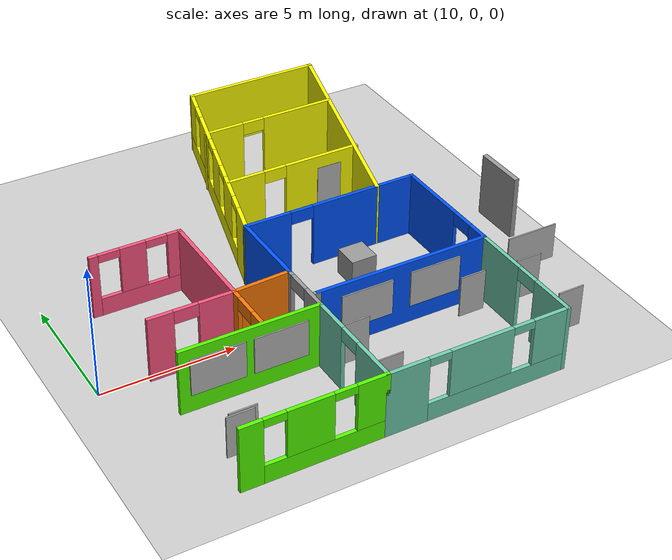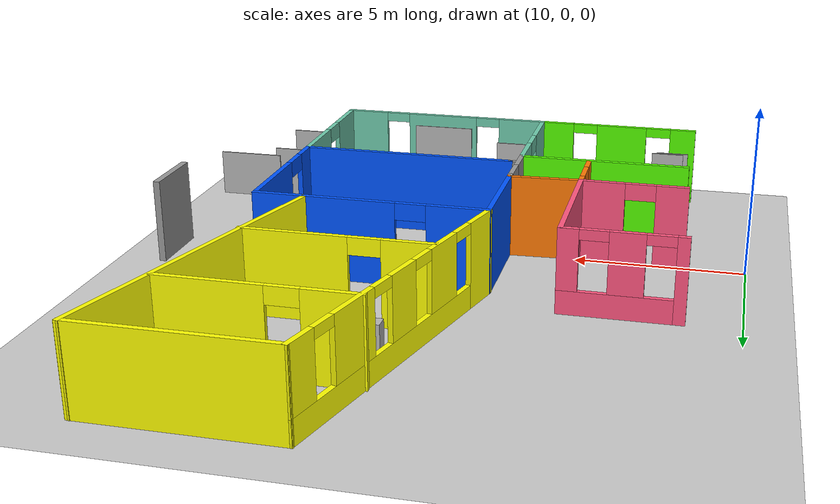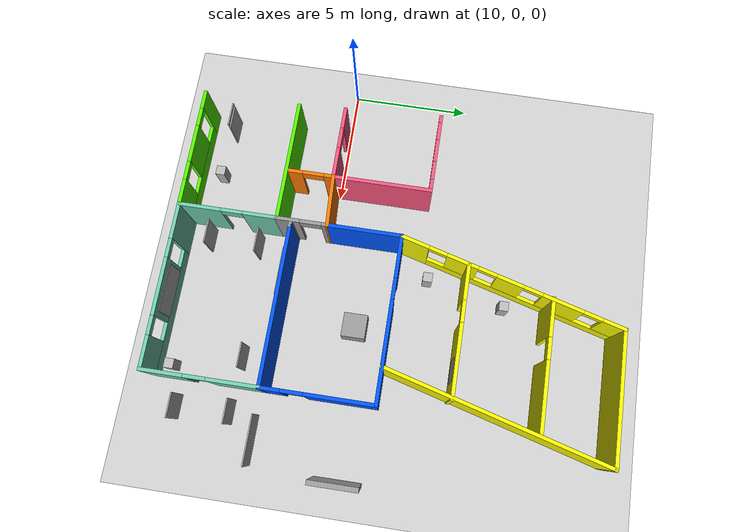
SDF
<sdf version="1.6">
 <world name="default">
  <model name="ground_plane">
   <static>1</static>
   <link name="link">
    <collision name="collision">
     <geometry><plane><normal>0 0 1</normal><size>100 100</size></plane></geometry>
     <surface><friction><ode><mu>100</mu><mu2>50</mu2></ode></friction></surface>
    </collision>
    <visual name="visual">
     <cast_shadows>0</cast_shadows>
     <geometry><plane><normal>0 0 1</normal><size>100 100</size></plane></geometry>
     <material>
      <script><uri>file://media/materials/scripts/gazebo.material</uri><name>Gazebo/Grey</name></script>
     </material>
    </visual>
   </link>
  </model>
  <model name="gallery2">
   <pose>17.6734 2.86394 0 0 -0 0</pose>
   <link name="Wall_27">
    <pose>-4.41014 1.08662 0 0 -0 0</pose>
    <visual name="Wall_27_Visual_0">
     <pose>-1.58096 0 1.25 0 -0 0</pose>
     <geometry><box><size>0.338071 0.15 2.5</size></box></geometry>
     <material>
      <script><uri>file://media/materials/scripts/gazebo.material</uri><name>Gazebo/Grey</name></script>
      <ambient>1 0.333333 0.498039 1</ambient>
     </material>
     <meta><layer>0</layer></meta>
    </visual>
    <collision name="Wall_27_Collision_0">
     <geometry><box><size>0.338071 0.15 2.5</size></box></geometry>
     <pose>-1.58096 0 1.25 0 -0 0</pose>
    </collision>
    <visual name="Wall_27_Visual_1">
     <pose>0.169036 0 0.35 0 -0 0</pose>
     <geometry><box><size>3.16193 0.15 0.7</size></box></geometry>
     <material>
      <script><uri>file://media/materials/scripts/gazebo.material</uri><name>Gazebo/Grey</name></script>
      <ambient>1 0.333333 0.498039 1</ambient>
     </material>
     <meta><layer>0</layer></meta>
    </visual>
    <collision name="Wall_27_Collision_1">
     <geometry><box><size>3.16193 0.15 0.7</size></box></geometry>
     <pose>0.169036 0 0.35 0 -0 0</pose>
    </collision>
    <visual name="Wall_27_Visual_2">
     <pose>-0.12194 0 1.6 0 -0 0</pose>
     <geometry><box><size>0.979976 0.15 1.8</size></box></geometry>
     <material>
      <script><uri>file://media/materials/scripts/gazebo.material</uri><name>Gazebo/Grey</name></script>
      <ambient>1 0.333333 0.498039 1</ambient>
     </material>
     <meta><layer>0</layer></meta>
    </visual>
    <collision name="Wall_27_Collision_2">
     <geometry><box><size>0.979976 0.15 1.8</size></box></geometry>
     <pose>-0.12194 0 1.6 0 -0 0</pose>
    </collision>
    <visual name="Wall_27_Visual_3">
     <pose>1.45902 0 1.6 0 -0 0</pose>
     <geometry><box><size>0.581952 0.15 1.8</size></box></geometry>
     <material>
      <script><uri>file://media/materials/scripts/gazebo.material</uri><name>Gazebo/Grey</name></script>
      <ambient>1 0.333333 0.498039 1</ambient>
     </material>
     <meta><layer>0</layer></meta>
    </visual>
    <collision name="Wall_27_Collision_3">
     <geometry><box><size>0.581952 0.15 1.8</size></box></geometry>
     <pose>1.45902 0 1.6 0 -0 0</pose>
    </collision>
    <visual name="Wall_27_Visual_4">
     <pose>-1.01193 0 2.35 0 -0 0</pose>
     <geometry><box><size>0.8 0.15 0.3</size></box></geometry>
     <material>
      <script><uri>file://media/materials/scripts/gazebo.material</uri><name>Gazebo/Grey</name></script>
      <ambient>1 0.333333 0.498039 1</ambient>
     </material>
     <meta><layer>0</layer></meta>
    </visual>
    <collision name="Wall_27_Collision_4">
     <geometry><box><size>0.8 0.15 0.3</size></box></geometry>
     <pose>-1.01193 0 2.35 0 -0 0</pose>
    </collision>
    <visual name="Wall_27_Visual_5">
     <pose>0.768048 0 2.35 0 -0 0</pose>
     <geometry><box><size>0.8 0.15 0.3</size></box></geometry>
     <material>
      <script><uri>file://media/materials/scripts/gazebo.material</uri><name>Gazebo/Grey</name></script>
      <ambient>1 0.333333 0.498039 1</ambient>
     </material>
     <meta><layer>0</layer></meta>
    </visual>
    <collision name="Wall_27_Collision_5">
     <geometry><box><size>0.8 0.15 0.3</size></box></geometry>
     <pose>0.768048 0 2.35 0 -0 0</pose>
    </collision>
   </link>
   <link name="Wall_28">
    <collision name="Wall_28_Collision">
     <geometry><box><size>4.25 0.15 2.5</size></box></geometry>
     <pose>0 0 1.25 0 -0 0</pose>
    </collision>
    <visual name="Wall_28_Visual">
     <pose>0 0 1.25 0 -0 0</pose>
     <geometry><box><size>4.25 0.15 2.5</size></box></geometry>
     <material>
      <script><uri>file://media/materials/scripts/gazebo.material</uri><name>Gazebo/Grey</name></script>
      <ambient>1 0.333333 0.498039 1</ambient>
     </material>
     <meta><layer>0</layer></meta>
    </visual>
    <pose>-2.73514 -0.963385 0 0 0 -1.5708</pose>
   </link>
   <link name="Wall_29">
    <pose>-4.28514 -3.01338 0 0 -0 3.14159</pose>
    <visual name="Wall_29_Visual_0">
     <pose>-0.928845 0 1.25 0 -0 0</pose>
     <geometry><box><size>1.39231 0.15 2.5</size></box></geometry>
     <material>
      <script><uri>file://media/materials/scripts/gazebo.material</uri><name>Gazebo/Grey</name></script>
      <ambient>1 0.333333 0.498039 1</ambient>
     </material>
     <meta><layer>0</layer></meta>
    </visual>
    <collision name="Wall_29_Collision_0">
     <geometry><box><size>1.39231 0.15 2.5</size></box></geometry>
     <pose>-0.928845 0 1.25 0 -0 0</pose>
    </collision>
    <visual name="Wall_29_Visual_1">
     <pose>1.14616 0 1.25 0 -0 0</pose>
     <geometry><box><size>0.95769 0.15 2.5</size></box></geometry>
     <material>
      <script><uri>file://media/materials/scripts/gazebo.material</uri><name>Gazebo/Grey</name></script>
      <ambient>1 0.333333 0.498039 1</ambient>
     </material>
     <meta><layer>0</layer></meta>
    </visual>
    <collision name="Wall_29_Collision_1">
     <geometry><box><size>0.95769 0.15 2.5</size></box></geometry>
     <pose>1.14616 0 1.25 0 -0 0</pose>
    </collision>
    <visual name="Wall_29_Visual_2">
     <pose>0.21731 0 2.25 0 -0 0</pose>
     <geometry><box><size>0.9 0.15 0.5</size></box></geometry>
     <material>
      <script><uri>file://media/materials/scripts/gazebo.material</uri><name>Gazebo/Grey</name></script>
      <ambient>1 0.333333 0.498039 1</ambient>
     </material>
     <meta><layer>0</layer></meta>
    </visual>
    <collision name="Wall_29_Collision_2">
     <geometry><box><size>0.9 0.15 0.5</size></box></geometry>
     <pose>0.21731 0 2.25 0 -0 0</pose>
    </collision>
   </link>
   <link name="Wall_33">
    <pose>-3.1626 -9.10606 0 0 -0 0</pose>
    <visual name="Wall_33_Visual_0">
     <pose>-2.20883 0 1.25 0 -0 0</pose>
     <geometry><box><size>0.832343 0.15 2.5</size></box></geometry>
     <material>
      <script><uri>file://media/materials/scripts/gazebo.material</uri><name>Gazebo/Grey</name></script>
      <ambient>0.333333 1 0 1</ambient>
     </material>
     <meta><layer>0</layer></meta>
    </visual>
    <collision name="Wall_33_Collision_0">
     <geometry><box><size>0.832343 0.15 2.5</size></box></geometry>
     <pose>-2.20883 0 1.25 0 -0 0</pose>
    </collision>
    <visual name="Wall_33_Visual_1">
     <pose>0.416172 0 0.35 0 -0 0</pose>
     <geometry><box><size>4.41766 0.15 0.7</size></box></geometry>
     <material>
      <script><uri>file://media/materials/scripts/gazebo.material</uri><name>Gazebo/Grey</name></script>
      <ambient>0.333333 1 0 1</ambient>
     </material>
     <meta><layer>0</layer></meta>
    </visual>
    <collision name="Wall_33_Collision_1">
     <geometry><box><size>4.41766 0.15 0.7</size></box></geometry>
     <pose>0.416172 0 0.35 0 -0 0</pose>
    </collision>
    <visual name="Wall_33_Visual_2">
     <pose>-0.163992 0 1.6 0 -0 0</pose>
     <geometry><box><size>1.65733 0.15 1.8</size></box></geometry>
     <material>
      <script><uri>file://media/materials/scripts/gazebo.material</uri><name>Gazebo/Grey</name></script>
      <ambient>0.333333 1 0 1</ambient>
     </material>
     <meta><layer>0</layer></meta>
    </visual>
    <collision name="Wall_33_Collision_2">
     <geometry><box><size>1.65733 0.15 1.8</size></box></geometry>
     <pose>-0.163992 0 1.6 0 -0 0</pose>
    </collision>
    <visual name="Wall_33_Visual_3">
     <pose>2.04484 0 1.6 0 -0 0</pose>
     <geometry><box><size>1.16033 0.15 1.8</size></box></geometry>
     <material>
      <script><uri>file://media/materials/scripts/gazebo.material</uri><name>Gazebo/Grey</name></script>
      <ambient>0.333333 1 0 1</ambient>
     </material>
     <meta><layer>0</layer></meta>
    </visual>
    <collision name="Wall_33_Collision_3">
     <geometry><box><size>1.16033 0.15 1.8</size></box></geometry>
     <pose>2.04484 0 1.6 0 -0 0</pose>
    </collision>
    <visual name="Wall_33_Visual_4">
     <pose>-1.39266 0 2.35 0 -0 0</pose>
     <geometry><box><size>0.8 0.15 0.3</size></box></geometry>
     <material>
      <script><uri>file://media/materials/scripts/gazebo.material</uri><name>Gazebo/Grey</name></script>
      <ambient>0.333333 1 0 1</ambient>
     </material>
     <meta><layer>0</layer></meta>
    </visual>
    <collision name="Wall_33_Collision_4">
     <geometry><box><size>0.8 0.15 0.3</size></box></geometry>
     <pose>-1.39266 0 2.35 0 -0 0</pose>
    </collision>
    <visual name="Wall_33_Visual_5">
     <pose>1.06467 0 2.35 0 -0 0</pose>
     <geometry><box><size>0.8 0.15 0.3</size></box></geometry>
     <material>
      <script><uri>file://media/materials/scripts/gazebo.material</uri><name>Gazebo/Grey</name></script>
      <ambient>0.333333 1 0 1</ambient>
     </material>
     <meta><layer>0</layer></meta>
    </visual>
    <collision name="Wall_33_Collision_5">
     <geometry><box><size>0.8 0.15 0.3</size></box></geometry>
     <pose>1.06467 0 2.35 0 -0 0</pose>
    </collision>
   </link>
   <link name="Wall_34">
    <pose>-0.612598 -7.05606 0 0 -0 1.5708</pose>
    <visual name="Wall_34_Visual_0">
     <pose>-1.20806 0 1.25 0 -0 0</pose>
     <geometry><box><size>1.83388 0.15 2.5</size></box></geometry>
     <material>
      <script><uri>file://media/materials/scripts/gazebo.material</uri><name>Gazebo/Grey</name></script>
      <ambient>0.435294 0.796078 0.67451 1</ambient>
     </material>
     <meta><layer>0</layer></meta>
    </visual>
    <collision name="Wall_34_Collision_0">
     <geometry><box><size>1.83388 0.15 2.5</size></box></geometry>
     <pose>-1.20806 0 1.25 0 -0 0</pose>
    </collision>
    <visual name="Wall_34_Visual_1">
     <pose>1.36694 0 1.25 0 -0 0</pose>
     <geometry><box><size>1.51612 0.15 2.5</size></box></geometry>
     <material>
      <script><uri>file://media/materials/scripts/gazebo.material</uri><name>Gazebo/Grey</name></script>
      <ambient>0.435294 0.796078 0.67451 1</ambient>
     </material>
     <meta><layer>0</layer></meta>
    </visual>
    <collision name="Wall_34_Collision_1">
     <geometry><box><size>1.51612 0.15 2.5</size></box></geometry>
     <pose>1.36694 0 1.25 0 -0 0</pose>
    </collision>
    <visual name="Wall_34_Visual_2">
     <pose>0.158885 0 2.25 0 -0 0</pose>
     <geometry><box><size>0.9 0.15 0.5</size></box></geometry>
     <material>
      <script><uri>file://media/materials/scripts/gazebo.material</uri><name>Gazebo/Grey</name></script>
      <ambient>0.435294 0.796078 0.67451 1</ambient>
     </material>
     <meta><layer>0</layer></meta>
    </visual>
    <collision name="Wall_34_Collision_2">
     <geometry><box><size>0.9 0.15 0.5</size></box></geometry>
     <pose>0.158885 0 2.25 0 -0 0</pose>
    </collision>
   </link>
   <link name="Wall_35">
    <collision name="Wall_35_Collision">
     <geometry><box><size>5.25 0.15 2.5</size></box></geometry>
     <pose>0 0 1.25 0 -0 0</pose>
    </collision>
    <visual name="Wall_35_Visual">
     <pose>0 0 1.25 0 -0 0</pose>
     <geometry><box><size>5.25 0.15 2.5</size></box></geometry>
     <material>
      <script><uri>file://media/materials/scripts/gazebo.material</uri><name>Gazebo/Grey</name></script>
      <ambient>0.333333 1 0 1</ambient>
     </material>
     <meta><layer>0</layer></meta>
    </visual>
    <pose>-3.1626 -5.00606 0 0 -0 3.14159</pose>
   </link>
   <link name="Wall_37">
    <pose>-0.612598 -3.95606 0 0 -0 1.5708</pose>
    <visual name="Wall_37_Visual_0">
     <pose>-0.608845 0 1.25 0 -0 0</pose>
     <geometry><box><size>1.03231 0.15 2.5</size></box></geometry>
     <material>
      <script><uri>file://media/materials/scripts/gazebo.material</uri><name>Gazebo/Grey</name></script>
      <ambient>1 1 1 1</ambient>
     </material>
     <meta><layer>0</layer></meta>
    </visual>
    <collision name="Wall_37_Collision_0">
     <geometry><box><size>1.03231 0.15 2.5</size></box></geometry>
     <pose>-0.608845 0 1.25 0 -0 0</pose>
    </collision>
    <visual name="Wall_37_Visual_1">
     <pose>0.966155 0 1.25 0 -0 0</pose>
     <geometry><box><size>0.31769 0.15 2.5</size></box></geometry>
     <material>
      <script><uri>file://media/materials/scripts/gazebo.material</uri><name>Gazebo/Grey</name></script>
      <ambient>1 1 1 1</ambient>
     </material>
     <meta><layer>0</layer></meta>
    </visual>
    <collision name="Wall_37_Collision_1">
     <geometry><box><size>0.31769 0.15 2.5</size></box></geometry>
     <pose>0.966155 0 1.25 0 -0 0</pose>
    </collision>
    <visual name="Wall_37_Visual_2">
     <pose>0.35731 0 2.25 0 -0 0</pose>
     <geometry><box><size>0.9 0.15 0.5</size></box></geometry>
     <material>
      <script><uri>file://media/materials/scripts/gazebo.material</uri><name>Gazebo/Grey</name></script>
      <ambient>1 1 1 1</ambient>
     </material>
     <meta><layer>0</layer></meta>
    </visual>
    <collision name="Wall_37_Collision_2">
     <geometry><box><size>0.9 0.15 0.5</size></box></geometry>
     <pose>0.35731 0 2.25 0 -0 0</pose>
    </collision>
   </link>
   <link name="Wall_38">
    <collision name="Wall_38_Collision">
     <geometry><box><size>2.27526 0.15 2.5</size></box></geometry>
     <pose>0 0 1.25 0 -0 0</pose>
    </collision>
    <visual name="Wall_38_Visual">
     <pose>0 0 1.25 0 -0 0</pose>
     <geometry><box><size>2.27526 0.15 2.5</size></box></geometry>
     <material>
      <script><uri>file://media/materials/scripts/gazebo.material</uri><name>Gazebo/Grey</name></script>
      <ambient>0.996078 0.47451 0.0196078 1</ambient>
     </material>
     <meta><layer>0</layer></meta>
    </visual>
    <pose>-1.67387 -2.95972 0 0 0 -3.09107</pose>
   </link>
   <link name="Wall_39">
    <pose>-2.73514 -3.93838 0 0 0 -1.5708</pose>
    <visual name="Wall_39_Visual_0">
     <pose>-0.761817 0 1.25 0 -0 0</pose>
     <geometry><box><size>0.476367 0.15 2.5</size></box></geometry>
     <material>
      <script><uri>file://media/materials/scripts/gazebo.material</uri><name>Gazebo/Grey</name></script>
      <ambient>0.996078 0.47451 0.0196078 1</ambient>
     </material>
     <meta><layer>0</layer></meta>
    </visual>
    <collision name="Wall_39_Collision_0">
     <geometry><box><size>0.476367 0.15 2.5</size></box></geometry>
     <pose>-0.761817 0 1.25 0 -0 0</pose>
    </collision>
    <visual name="Wall_39_Visual_1">
     <pose>0.688183 0 1.25 0 -0 0</pose>
     <geometry><box><size>0.623633 0.15 2.5</size></box></geometry>
     <material>
      <script><uri>file://media/materials/scripts/gazebo.material</uri><name>Gazebo/Grey</name></script>
      <ambient>0.996078 0.47451 0.0196078 1</ambient>
     </material>
     <meta><layer>0</layer></meta>
    </visual>
    <collision name="Wall_39_Collision_1">
     <geometry><box><size>0.623633 0.15 2.5</size></box></geometry>
     <pose>0.688183 0 1.25 0 -0 0</pose>
    </collision>
    <visual name="Wall_39_Visual_2">
     <pose>-0.073633 0 2.25 0 -0 0</pose>
     <geometry><box><size>0.9 0.15 0.5</size></box></geometry>
     <material>
      <script><uri>file://media/materials/scripts/gazebo.material</uri><name>Gazebo/Grey</name></script>
      <ambient>0.996078 0.47451 0.0196078 1</ambient>
     </material>
     <meta><layer>0</layer></meta>
    </visual>
    <collision name="Wall_39_Collision_2">
     <geometry><box><size>0.9 0.15 0.5</size></box></geometry>
     <pose>-0.073633 0 2.25 0 -0 0</pose>
    </collision>
   </link>
   <link name="Wall_41">
    <collision name="Wall_41_Collision">
     <geometry><box><size>3.25 0.15 2.5</size></box></geometry>
     <pose>0 0 1.25 0 -0 0</pose>
    </collision>
    <visual name="Wall_41_Visual">
     <pose>0 0 1.25 0 -0 0</pose>
     <geometry><box><size>3.25 0.15 2.5</size></box></geometry>
     <material>
      <script><uri>file://media/materials/scripts/gazebo.material</uri><name>Gazebo/Grey</name></script>
      <ambient>0 0.333333 1 1</ambient>
     </material>
     <meta><layer>0</layer></meta>
    </visual>
    <pose>-0.612598 -1.35606 0 0 -0 1.5708</pose>
   </link>
   <link name="Wall_42">
    <pose>2.8124 0.193941 0 0 -0 0</pose>
    <visual name="Wall_42_Visual_0">
     <pose>-2.5734 0 1.25 0 -0 0</pose>
     <geometry><box><size>1.85319 0.15 2.5</size></box></geometry>
     <material>
      <script><uri>file://media/materials/scripts/gazebo.material</uri><name>Gazebo/Grey</name></script>
      <ambient>0 0.333333 1 1</ambient>
     </material>
     <meta><layer>0</layer></meta>
    </visual>
    <collision name="Wall_42_Collision_0">
     <geometry><box><size>1.85319 0.15 2.5</size></box></geometry>
     <pose>-2.5734 0 1.25 0 -0 0</pose>
    </collision>
    <visual name="Wall_42_Visual_1">
     <pose>1.3766 0 1.25 0 -0 0</pose>
     <geometry><box><size>4.24681 0.15 2.5</size></box></geometry>
     <material>
      <script><uri>file://media/materials/scripts/gazebo.material</uri><name>Gazebo/Grey</name></script>
      <ambient>0 0.333333 1 1</ambient>
     </material>
     <meta><layer>0</layer></meta>
    </visual>
    <collision name="Wall_42_Collision_1">
     <geometry><box><size>4.24681 0.15 2.5</size></box></geometry>
     <pose>1.3766 0 1.25 0 -0 0</pose>
    </collision>
    <visual name="Wall_42_Visual_2">
     <pose>-1.19681 0 2.25 0 -0 0</pose>
     <geometry><box><size>0.9 0.15 0.5</size></box></geometry>
     <material>
      <script><uri>file://media/materials/scripts/gazebo.material</uri><name>Gazebo/Grey</name></script>
      <ambient>0 0.333333 1 1</ambient>
     </material>
     <meta><layer>0</layer></meta>
    </visual>
    <collision name="Wall_42_Collision_2">
     <geometry><box><size>0.9 0.15 0.5</size></box></geometry>
     <pose>-1.19681 0 2.25 0 -0 0</pose>
    </collision>
   </link>
   <link name="Wall_43">
    <pose>6.2374 -2.10606 0 0 0 -1.5708</pose>
    <visual name="Wall_43_Visual_0">
     <pose>-0.905557 0 1.25 0 -0 0</pose>
     <geometry><box><size>2.93889 0.15 2.5</size></box></geometry>
     <material>
      <script><uri>file://media/materials/scripts/gazebo.material</uri><name>Gazebo/Grey</name></script>
      <ambient>0 0.333333 1 1</ambient>
     </material>
     <meta><layer>0</layer></meta>
    </visual>
    <collision name="Wall_43_Collision_0">
     <geometry><box><size>2.93889 0.15 2.5</size></box></geometry>
     <pose>-0.905557 0 1.25 0 -0 0</pose>
    </collision>
    <visual name="Wall_43_Visual_1">
     <pose>1.91944 0 1.25 0 -0 0</pose>
     <geometry><box><size>0.911113 0.15 2.5</size></box></geometry>
     <material>
      <script><uri>file://media/materials/scripts/gazebo.material</uri><name>Gazebo/Grey</name></script>
      <ambient>0 0.333333 1 1</ambient>
     </material>
     <meta><layer>0</layer></meta>
    </visual>
    <collision name="Wall_43_Collision_1">
     <geometry><box><size>0.911113 0.15 2.5</size></box></geometry>
     <pose>1.91944 0 1.25 0 -0 0</pose>
    </collision>
    <visual name="Wall_43_Visual_2">
     <pose>1.01389 0 2.25 0 -0 0</pose>
     <geometry><box><size>0.9 0.15 0.5</size></box></geometry>
     <material>
      <script><uri>file://media/materials/scripts/gazebo.material</uri><name>Gazebo/Grey</name></script>
      <ambient>0 0.333333 1 1</ambient>
     </material>
     <meta><layer>0</layer></meta>
    </visual>
    <collision name="Wall_43_Collision_2">
     <geometry><box><size>0.9 0.15 0.5</size></box></geometry>
     <pose>1.01389 0 2.25 0 -0 0</pose>
    </collision>
   </link>
   <link name="Wall_44">
    <collision name="Wall_44_Collision">
     <geometry><box><size>6.75 0.15 2.5</size></box></geometry>
     <pose>0 0 1.25 0 -0 0</pose>
    </collision>
    <visual name="Wall_44_Visual">
     <pose>0 0 1.25 0 -0 0</pose>
     <geometry><box><size>6.75 0.15 2.5</size></box></geometry>
     <material>
      <script><uri>file://media/materials/scripts/gazebo.material</uri><name>Gazebo/Grey</name></script>
      <ambient>0 0.333333 1 1</ambient>
     </material>
     <meta><layer>0</layer></meta>
    </visual>
    <pose>2.9374 -4.40606 0 0 -0 3.14159</pose>
   </link>
   <link name="Wall_45">
    <collision name="Wall_45_Collision">
     <geometry><box><size>0.25 0.15 2.5</size></box></geometry>
     <pose>0 0 1.25 0 -0 0</pose>
    </collision>
    <visual name="Wall_45_Visual">
     <pose>0 0 1.25 0 -0 0</pose>
     <geometry><box><size>0.25 0.15 2.5</size></box></geometry>
     <material>
      <script><uri>file://media/materials/scripts/gazebo.material</uri><name>Gazebo/Grey</name></script>
      <ambient>1 1 1 1</ambient>
     </material>
     <meta><layer>0</layer></meta>
    </visual>
    <pose>-0.412598 -4.40606 0 0 -0 3.14159</pose>
   </link>
   <link name="Wall_47">
    <pose>2.8124 -9.10606 0 0 -0 0</pose>
    <visual name="Wall_47_Visual_0">
     <pose>-2.70603 0 1.25 0 -0 0</pose>
     <geometry><box><size>1.58794 0.15 2.5</size></box></geometry>
     <material>
      <script><uri>file://media/materials/scripts/gazebo.material</uri><name>Gazebo/Grey</name></script>
      <ambient>0.435294 0.796078 0.67451 1</ambient>
     </material>
     <meta><layer>0</layer></meta>
    </visual>
    <collision name="Wall_47_Collision_0">
     <geometry><box><size>1.58794 0.15 2.5</size></box></geometry>
     <pose>-2.70603 0 1.25 0 -0 0</pose>
    </collision>
    <visual name="Wall_47_Visual_1">
     <pose>0.79397 0 0.35 0 -0 0</pose>
     <geometry><box><size>5.41206 0.15 0.7</size></box></geometry>
     <material>
      <script><uri>file://media/materials/scripts/gazebo.material</uri><name>Gazebo/Grey</name></script>
      <ambient>0.435294 0.796078 0.67451 1</ambient>
     </material>
     <meta><layer>0</layer></meta>
    </visual>
    <collision name="Wall_47_Collision_1">
     <geometry><box><size>5.41206 0.15 0.7</size></box></geometry>
     <pose>0.79397 0 0.35 0 -0 0</pose>
    </collision>
    <visual name="Wall_47_Visual_2">
     <pose>0.085935 0 1.6 0 -0 0</pose>
     <geometry><box><size>2.39599 0.15 1.8</size></box></geometry>
     <material>
      <script><uri>file://media/materials/scripts/gazebo.material</uri><name>Gazebo/Grey</name></script>
      <ambient>0.435294 0.796078 0.67451 1</ambient>
     </material>
     <meta><layer>0</layer></meta>
    </visual>
    <collision name="Wall_47_Collision_2">
     <geometry><box><size>2.39599 0.15 1.8</size></box></geometry>
     <pose>0.085935 0 1.6 0 -0 0</pose>
    </collision>
    <visual name="Wall_47_Visual_3">
     <pose>2.79196 0 1.6 0 -0 0</pose>
     <geometry><box><size>1.41607 0.15 1.8</size></box></geometry>
     <material>
      <script><uri>file://media/materials/scripts/gazebo.material</uri><name>Gazebo/Grey</name></script>
      <ambient>0.435294 0.796078 0.67451 1</ambient>
     </material>
     <meta><layer>0</layer></meta>
    </visual>
    <collision name="Wall_47_Collision_3">
     <geometry><box><size>1.41607 0.15 1.8</size></box></geometry>
     <pose>2.79196 0 1.6 0 -0 0</pose>
    </collision>
    <visual name="Wall_47_Visual_4">
     <pose>-1.51206 0 2.35 0 -0 0</pose>
     <geometry><box><size>0.8 0.15 0.3</size></box></geometry>
     <material>
      <script><uri>file://media/materials/scripts/gazebo.material</uri><name>Gazebo/Grey</name></script>
      <ambient>0.435294 0.796078 0.67451 1</ambient>
     </material>
     <meta><layer>0</layer></meta>
    </visual>
    <collision name="Wall_47_Collision_4">
     <geometry><box><size>0.8 0.15 0.3</size></box></geometry>
     <pose>-1.51206 0 2.35 0 -0 0</pose>
    </collision>
    <visual name="Wall_47_Visual_5">
     <pose>1.68393 0 2.35 0 -0 0</pose>
     <geometry><box><size>0.8 0.15 0.3</size></box></geometry>
     <material>
      <script><uri>file://media/materials/scripts/gazebo.material</uri><name>Gazebo/Grey</name></script>
      <ambient>0.435294 0.796078 0.67451 1</ambient>
     </material>
     <meta><layer>0</layer></meta>
    </visual>
    <collision name="Wall_47_Collision_5">
     <geometry><box><size>0.8 0.15 0.3</size></box></geometry>
     <pose>1.68393 0 2.35 0 -0 0</pose>
    </collision>
   </link>
   <link name="Wall_48">
    <pose>6.2374 -6.75606 0 0 -0 1.5708</pose>
    <visual name="Wall_48_Visual_0">
     <pose>-1.53466 0 1.25 0 -0 0</pose>
     <geometry><box><size>1.78069 0.15 2.5</size></box></geometry>
     <material>
      <script><uri>file://media/materials/scripts/gazebo.material</uri><name>Gazebo/Grey</name></script>
      <ambient>0.435294 0.796078 0.67451 1</ambient>
     </material>
     <meta><layer>0</layer></meta>
    </visual>
    <collision name="Wall_48_Collision_0">
     <geometry><box><size>1.78069 0.15 2.5</size></box></geometry>
     <pose>-1.53466 0 1.25 0 -0 0</pose>
    </collision>
    <visual name="Wall_48_Visual_1">
     <pose>1.34034 0 1.25 0 -0 0</pose>
     <geometry><box><size>2.16932 0.15 2.5</size></box></geometry>
     <material>
      <script><uri>file://media/materials/scripts/gazebo.material</uri><name>Gazebo/Grey</name></script>
      <ambient>0.435294 0.796078 0.67451 1</ambient>
     </material>
     <meta><layer>0</layer></meta>
    </visual>
    <collision name="Wall_48_Collision_1">
     <geometry><box><size>2.16932 0.15 2.5</size></box></geometry>
     <pose>1.34034 0 1.25 0 -0 0</pose>
    </collision>
    <visual name="Wall_48_Visual_2">
     <pose>-0.194315 0 2.25 0 -0 0</pose>
     <geometry><box><size>0.9 0.15 0.5</size></box></geometry>
     <material>
      <script><uri>file://media/materials/scripts/gazebo.material</uri><name>Gazebo/Grey</name></script>
      <ambient>0.435294 0.796078 0.67451 1</ambient>
     </material>
     <meta><layer>0</layer></meta>
    </visual>
    <collision name="Wall_48_Collision_2">
     <geometry><box><size>0.9 0.15 0.5</size></box></geometry>
     <pose>-0.194315 0 2.25 0 -0 0</pose>
    </collision>
   </link>
   <link name="Wall_77">
    <pose>0.629733 4.83038 0 0 -0 1.309</pose>
    <visual name="Wall_77_Visual_0">
     <pose>-4.23437 0 1.25 0 -0 0</pose>
     <geometry><box><size>1.28125 0.15 2.5</size></box></geometry>
     <material>
      <script><uri>file://media/materials/scripts/gazebo.material</uri><name>Gazebo/Grey</name></script>
      <ambient>1 1 0 1</ambient>
     </material>
     <meta><layer>0</layer></meta>
    </visual>
    <collision name="Wall_77_Collision_0">
     <geometry><box><size>1.28125 0.15 2.5</size></box></geometry>
     <pose>-4.23437 0 1.25 0 -0 0</pose>
    </collision>
    <visual name="Wall_77_Visual_1">
     <pose>0.640627 0 0.35 0 -0 0</pose>
     <geometry><box><size>8.46875 0.15 0.7</size></box></geometry>
     <material>
      <script><uri>file://media/materials/scripts/gazebo.material</uri><name>Gazebo/Grey</name></script>
      <ambient>1 1 0 1</ambient>
     </material>
     <meta><layer>0</layer></meta>
    </visual>
    <collision name="Wall_77_Collision_1">
     <geometry><box><size>8.46875 0.15 0.7</size></box></geometry>
     <pose>0.640627 0 0.35 0 -0 0</pose>
    </collision>
    <visual name="Wall_77_Visual_2">
     <pose>-2.11109 0 1.6 0 -0 0</pose>
     <geometry><box><size>1.36532 0.15 1.8</size></box></geometry>
     <material>
      <script><uri>file://media/materials/scripts/gazebo.material</uri><name>Gazebo/Grey</name></script>
      <ambient>1 1 0 1</ambient>
     </material>
     <meta><layer>0</layer></meta>
    </visual>
    <collision name="Wall_77_Collision_2">
     <geometry><box><size>1.36532 0.15 1.8</size></box></geometry>
     <pose>-2.11109 0 1.6 0 -0 0</pose>
    </collision>
    <visual name="Wall_77_Visual_3">
     <pose>-0.045886 0 1.6 0 -0 0</pose>
     <geometry><box><size>1.16508 0.15 1.8</size></box></geometry>
     <material>
      <script><uri>file://media/materials/scripts/gazebo.material</uri><name>Gazebo/Grey</name></script>
      <ambient>1 1 0 1</ambient>
     </material>
     <meta><layer>0</layer></meta>
    </visual>
    <collision name="Wall_77_Collision_3">
     <geometry><box><size>1.16508 0.15 1.8</size></box></geometry>
     <pose>-0.045886 0 1.6 0 -0 0</pose>
    </collision>
    <visual name="Wall_77_Visual_4">
     <pose>2.20027 0 1.6 0 -0 0</pose>
     <geometry><box><size>1.72724 0.15 1.8</size></box></geometry>
     <material>
      <script><uri>file://media/materials/scripts/gazebo.material</uri><name>Gazebo/Grey</name></script>
      <ambient>1 1 0 1</ambient>
     </material>
     <meta><layer>0</layer></meta>
    </visual>
    <collision name="Wall_77_Collision_4">
     <geometry><box><size>1.72724 0.15 1.8</size></box></geometry>
     <pose>2.20027 0 1.6 0 -0 0</pose>
    </collision>
    <visual name="Wall_77_Visual_5">
     <pose>4.36945 0 1.6 0 -0 0</pose>
     <geometry><box><size>1.01111 0.15 1.8</size></box></geometry>
     <material>
      <script><uri>file://media/materials/scripts/gazebo.material</uri><name>Gazebo/Grey</name></script>
      <ambient>1 1 0 1</ambient>
     </material>
     <meta><layer>0</layer></meta>
    </visual>
    <collision name="Wall_77_Collision_5">
     <geometry><box><size>1.01111 0.15 1.8</size></box></geometry>
     <pose>4.36945 0 1.6 0 -0 0</pose>
    </collision>
    <visual name="Wall_77_Visual_6">
     <pose>-3.19375 0 2.35 0 -0 0</pose>
     <geometry><box><size>0.8 0.15 0.3</size></box></geometry>
     <material>
      <script><uri>file://media/materials/scripts/gazebo.material</uri><name>Gazebo/Grey</name></script>
      <ambient>1 1 0 1</ambient>
     </material>
     <meta><layer>0</layer></meta>
    </visual>
    <collision name="Wall_77_Collision_6">
     <geometry><box><size>0.8 0.15 0.3</size></box></geometry>
     <pose>-3.19375 0 2.35 0 -0 0</pose>
    </collision>
    <visual name="Wall_77_Visual_7">
     <pose>-1.02842 0 2.35 0 -0 0</pose>
     <geometry><box><size>0.8 0.15 0.3</size></box></geometry>
     <material>
      <script><uri>file://media/materials/scripts/gazebo.material</uri><name>Gazebo/Grey</name></script>
      <ambient>1 1 0 1</ambient>
     </material>
     <meta><layer>0</layer></meta>
    </visual>
    <collision name="Wall_77_Collision_7">
     <geometry><box><size>0.8 0.15 0.3</size></box></geometry>
     <pose>-1.02842 0 2.35 0 -0 0</pose>
    </collision>
    <visual name="Wall_77_Visual_8">
     <pose>0.936652 0 2.35 0 -0 0</pose>
     <geometry><box><size>0.8 0.15 0.3</size></box></geometry>
     <material>
      <script><uri>file://media/materials/scripts/gazebo.material</uri><name>Gazebo/Grey</name></script>
      <ambient>1 1 0 1</ambient>
     </material>
     <meta><layer>0</layer></meta>
    </visual>
    <collision name="Wall_77_Collision_8">
     <geometry><box><size>0.8 0.15 0.3</size></box></geometry>
     <pose>0.936652 0 2.35 0 -0 0</pose>
    </collision>
    <visual name="Wall_77_Visual_9">
     <pose>3.46389 0 2.35 0 -0 0</pose>
     <geometry><box><size>0.8 0.15 0.3</size></box></geometry>
     <material>
      <script><uri>file://media/materials/scripts/gazebo.material</uri><name>Gazebo/Grey</name></script>
      <ambient>1 1 0 1</ambient>
     </material>
     <meta><layer>0</layer></meta>
    </visual>
    <collision name="Wall_77_Collision_9">
     <geometry><box><size>0.8 0.15 0.3</size></box></geometry>
     <pose>3.46389 0 2.35 0 -0 0</pose>
    </collision>
   </link>
   <link name="Wall_78">
    <collision name="Wall_78_Collision">
     <geometry><box><size>5.5 0.15 2.5</size></box></geometry>
     <pose>0 0 1.25 0 -0 0</pose>
    </collision>
    <visual name="Wall_78_Visual">
     <pose>0 0 1.25 0 -0 0</pose>
     <geometry><box><size>5.5 0.15 2.5</size></box></geometry>
     <material>
      <script><uri>file://media/materials/scripts/gazebo.material</uri><name>Gazebo/Grey</name></script>
      <ambient>1 1 0 1</ambient>
     </material>
     <meta><layer>0</layer></meta>
    </visual>
    <pose>4.54706 9.46683 0 0 -0 0</pose>
   </link>
   <link name="Wall_79">
    <collision name="Wall_79_Collision">
     <geometry><box><size>9.75 0.15 2.5</size></box></geometry>
     <pose>0 0 1.25 0 -0 0</pose>
    </collision>
    <visual name="Wall_79_Visual">
     <pose>0 0 1.25 0 -0 0</pose>
     <geometry><box><size>9.75 0.15 2.5</size></box></geometry>
     <material>
      <script><uri>file://media/materials/scripts/gazebo.material</uri><name>Gazebo/Grey</name></script>
      <ambient>1 1 0 1</ambient>
     </material>
     <meta><layer>0</layer></meta>
    </visual>
    <pose>5.97973 4.83038 0 0 0 -1.8326</pose>
   </link>
   <link name="Wall_81">
    <pose>2.87742 3.0513 0 0 -0 3.14159</pose>
    <visual name="Wall_81_Visual_0">
     <pose>-1.20849 0 1.25 0 -0 0</pose>
     <geometry><box><size>3.08303 0.15 2.5</size></box></geometry>
     <material>
      <script><uri>file://media/materials/scripts/gazebo.material</uri><name>Gazebo/Grey</name></script>
      <ambient>1 1 0 1</ambient>
     </material>
     <meta><layer>0</layer></meta>
    </visual>
    <collision name="Wall_81_Collision_0">
     <geometry><box><size>3.08303 0.15 2.5</size></box></geometry>
     <pose>-1.20849 0 1.25 0 -0 0</pose>
    </collision>
    <visual name="Wall_81_Visual_1">
     <pose>1.99151 0 1.25 0 -0 0</pose>
     <geometry><box><size>1.51697 0.15 2.5</size></box></geometry>
     <material>
      <script><uri>file://media/materials/scripts/gazebo.material</uri><name>Gazebo/Grey</name></script>
      <ambient>1 1 0 1</ambient>
     </material>
     <meta><layer>0</layer></meta>
    </visual>
    <collision name="Wall_81_Collision_1">
     <geometry><box><size>1.51697 0.15 2.5</size></box></geometry>
     <pose>1.99151 0 1.25 0 -0 0</pose>
    </collision>
    <visual name="Wall_81_Visual_2">
     <pose>0.783026 0 2.25 0 -0 0</pose>
     <geometry><box><size>0.9 0.15 0.5</size></box></geometry>
     <material>
      <script><uri>file://media/materials/scripts/gazebo.material</uri><name>Gazebo/Grey</name></script>
      <ambient>1 1 0 1</ambient>
     </material>
     <meta><layer>0</layer></meta>
    </visual>
    <collision name="Wall_81_Collision_2">
     <geometry><box><size>0.9 0.15 0.5</size></box></geometry>
     <pose>0.783026 0 2.25 0 -0 0</pose>
    </collision>
   </link>
   <link name="Wall_83">
    <pose>3.72863 6.56253 0 0 -0 3.14159</pose>
    <visual name="Wall_83_Visual_0">
     <pose>-1.26169 0 1.25 0 -0 0</pose>
     <geometry><box><size>2.97662 0.15 2.5</size></box></geometry>
     <material>
      <script><uri>file://media/materials/scripts/gazebo.material</uri><name>Gazebo/Grey</name></script>
      <ambient>1 1 0 1</ambient>
     </material>
     <meta><layer>0</layer></meta>
    </visual>
    <collision name="Wall_83_Collision_0">
     <geometry><box><size>2.97662 0.15 2.5</size></box></geometry>
     <pose>-1.26169 0 1.25 0 -0 0</pose>
    </collision>
    <visual name="Wall_83_Visual_1">
     <pose>1.93831 0 1.25 0 -0 0</pose>
     <geometry><box><size>1.62338 0.15 2.5</size></box></geometry>
     <material>
      <script><uri>file://media/materials/scripts/gazebo.material</uri><name>Gazebo/Grey</name></script>
      <ambient>1 1 0 1</ambient>
     </material>
     <meta><layer>0</layer></meta>
    </visual>
    <collision name="Wall_83_Collision_1">
     <geometry><box><size>1.62338 0.15 2.5</size></box></geometry>
     <pose>1.93831 0 1.25 0 -0 0</pose>
    </collision>
    <visual name="Wall_83_Visual_2">
     <pose>0.676625 0 2.25 0 -0 0</pose>
     <geometry><box><size>0.9 0.15 0.5</size></box></geometry>
     <material>
      <script><uri>file://media/materials/scripts/gazebo.material</uri><name>Gazebo/Grey</name></script>
      <ambient>1 1 0 1</ambient>
     </material>
     <meta><layer>0</layer></meta>
    </visual>
    <collision name="Wall_83_Collision_2">
     <geometry><box><size>0.9 0.15 0.5</size></box></geometry>
     <pose>0.676625 0 2.25 0 -0 0</pose>
    </collision>
   </link>
   <static>1</static>
  </model>
  <model name="unit_box">
   <pose>20.7605 1.6279 0.5 0 -0 0</pose>
   <link name="link">
    <inertial>
     <mass>1</mass>
     <inertia>
      <ixx>0.166667</ixx>
      <ixy>0</ixy>
      <ixz>0</ixz>
      <iyy>0.166667</iyy>
      <iyz>0</iyz>
      <izz>0.166667</izz>
     </inertia>
    </inertial>
    <collision name="collision"><geometry><box><size>1 1 1</size></box></geometry></collision>
    <visual name="visual">
     <geometry><box><size>1 1 1</size></box></geometry>
     <material>
      <script><name>Gazebo/Grey</name><uri>file://media/materials/scripts/gazebo.material</uri></script>
     </material>
    </visual>
   </link>
  </model>
  <model name="Decoration2_0">
   <link name="link_1">
    <inertial>
     <mass>1</mass>
     <inertia>
      <ixx>0.166667</ixx>
      <ixy>0</ixy>
      <ixz>0</ixz>
      <iyy>0.166667</iyy>
      <iyz>0</iyz>
      <izz>0.166667</izz>
     </inertia>
    </inertial>
    <visual name="visual">
     <geometry><box><size>2 0.2 2.5</size></box></geometry>
     <material>
      <lighting>1</lighting>
      <script><uri>file://media/materials/scripts/gazebo.material</uri><name>Gazebo/Grey</name></script>
      <ambient>0.3 0.3 0.3 1</ambient>
      <diffuse>0.7 0.7 0.7 1</diffuse>
      <specular>0.01 0.01 0.01 1</specular>
      <emissive>0 0 0 1</emissive>
      <shader type="vertex"><normal_map>__default__</normal_map></shader>
     </material>
    </visual>
    <collision name="collision">
     <geometry><box><size>2 0.2 2.5</size></box></geometry>
     <surface>
      <friction>
       <ode><mu>1</mu><mu2>1</mu2><fdir1>0 0 0</fdir1><slip1>0</slip1><slip2>0</slip2></ode>
       <torsional>
        <coefficient>1</coefficient>
        <patch_radius>0</patch_radius>
        <surface_radius>0</surface_radius>
        <use_patch_radius>1</use_patch_radius>
        <ode><slip>0</slip></ode>
       </torsional>
      </friction>
      <bounce><restitution_coefficient>0</restitution_coefficient><threshold>1e+06</threshold></bounce>
      <contact>
       <collide_without_contact>0</collide_without_contact>
       <collide_without_contact_bitmask>1</collide_without_contact_bitmask>
       <collide_bitmask>1</collide_bitmask>
       <ode>
        <soft_cfm>0</soft_cfm>
        <soft_erp>0.2</soft_erp>
        <kp>1e+13</kp>
        <kd>1</kd>
        <max_vel>0.01</max_vel>
        <min_depth>0</min_depth>
       </ode>
       <bullet>
        <split_impulse>1</split_impulse>
        <split_impulse_penetration_threshold>-0.01</split_impulse_penetration_threshold>
        <soft_cfm>0</soft_cfm>
        <soft_erp>0.2</soft_erp>
        <kp>1e+13</kp>
        <kd>1</kd>
       </bullet>
      </contact>
     </surface>
    </collision>
   </link>
   <static>0</static>
   <pose>27.0654 1.90557 1.25 0 3e-06 1.57426</pose>
  </model>
  <include>
   <pose>25.9186 -1.64448 1.4 0 -0 0</pose>
   <name>roomb_img3p</name>
   <uri>model://leobot_gazebo/models/roomb_img3p</uri>
  </include>
  <include>
   <pose>24.9734 -2.74573 1.2 0 -0 0</pose>
   <name>roomb_img5</name>
   <uri>model://leobot_gazebo/models/roomb_img5</uri>
  </include>
  <include>
   <pose>25.08 -4.96761 1.2 0 -0 0</pose>
   <name>roomb_img6</name>
   <uri>model://leobot_gazebo/models/roomb_img6</uri>
  </include>
  <include>
   <pose>19.135 -1.70097 1.4 0 -0 0</pose>
   <name>roomc_img3p</name>
   <uri>model://leobot_gazebo/models/roomc_img3p</uri>
  </include>
  <include>
   <pose>21.8741 -1.65347 1.4 0 -0 0</pose>
   <name>roomc_img4p</name>
   <uri>model://leobot_gazebo/models/roomc_img4p</uri>
  </include>
  <include>
   <pose>22.7416 -2.63857 1.2 0 -0 0</pose>
   <name>roomc_img1</name>
   <uri>model://leobot_gazebo/models/roomc_img1</uri>
  </include>
  <include>
   <pose>20.5348 -6.16677 1.4 0 -0 0</pose>
   <name>roomc_img5p</name>
   <uri>model://leobot_gazebo/models/roomc_img5p</uri>
  </include>
  <include>
   <pose>23.4306 -5.65439 0 0 -0 0</pose>
   <name>statuac</name>
   <uri>model://leobot_gazebo/models/statuac</uri>
  </include>
  <include>
   <pose>17.9061 -5.03838 1.2 0 -0 0</pose>
   <name>roomc_img2</name>
   <uri>model://leobot_gazebo/models/roomc_img2</uri>
  </include>
  <include>
   <pose>17.9472 -2.92223 1.2 0 -0 0</pose>
   <name>roomb_img1_0</name>
   <uri>model://leobot_gazebo/models/roomb_img1</uri>
  </include>
  <include>
   <pose>15.5416 -2.27233 1.4 0 -0 0</pose>
   <name>roomc_img5p_0</name>
   <uri>model://leobot_gazebo/models/roomc_img5p</uri>
  </include>
  <include>
   <pose>13.2619 -2.26919 1.4 0 -0 0</pose>
   <name>roomf_img2p</name>
   <uri>model://leobot_gazebo/models/roomf_img2p</uri>
  </include>
  <include>
   <pose>14.8248 -5.31704 0 0 -0 0</pose>
   <name>statuad</name>
   <uri>model://leobot_gazebo/models/statuad</uri>
  </include>
  <include>
   <pose>12.5564 -5.12356 1.2 0 -0 0</pose>
   <name>roomd_img1</name>
   <uri>model://leobot_gazebo/models/roomd_img1</uri>
  </include>
  <include>
   <pose>12.7031 -5.01591 1.2 0 -0 0</pose>
   <name>roome_img3</name>
   <uri>model://leobot_gazebo/models/roome_img3</uri>
  </include>
  <include>
   <pose>22.0468 5.85848 1.2 0 -0 0</pose>
   <name>roomb_img2_0</name>
   <uri>model://leobot_gazebo/models/roomb_img2</uri>
  </include>
  <include>
   <pose>19.0157 7.69569 0 0 -0 0</pose>
   <name>statuac_0</name>
   <uri>model://leobot_gazebo/models/statuac</uri>
  </include>
  <include>
   <pose>18.2557 4.36947 0 0 -0 0</pose>
   <name>statuae</name>
   <uri>model://leobot_gazebo/models/statuae</uri>
  </include>
 </world>
</sdf>
